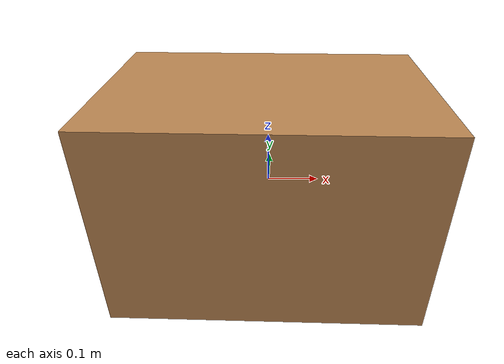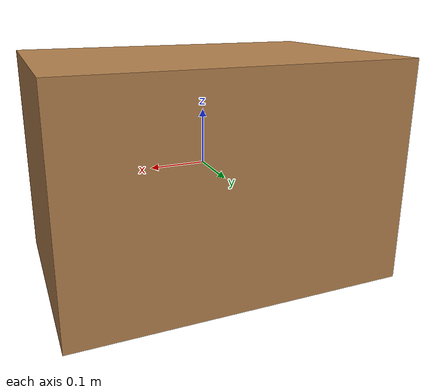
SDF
<?xml version='1.0'?>
<sdf version='1.7'>
  <model name='cardboard_box'>
    <link name='link'>
      <collision name='collision'>
        <geometry>
          <box>
            <size>0.6 0.4 0.4</size>
          </box>
        </geometry>
        <surface>
          <friction>
            <ode>
              <mu>1.0</mu>
              <mu2>1.0</mu2>
            </ode>
          </friction>
        </surface>
      </collision>
      <visual name='visual'>
        <geometry>
          <mesh>
            <uri>model://cardboard_box/meshes/cardboard_box.dae</uri>
          </mesh>
        </geometry>
        <material>
          <ambient>0.7 0.5 0.3 1.0</ambient>
          <diffuse>0.7 0.5 0.3 1.0</diffuse>
        </material>
      </visual>
      <inertial>
        <mass>1.0</mass>
        <inertia>
          <ixx>0.1</ixx><ixy>0.0</ixy><ixz>0.0</ixz>
          <iyy>0.1</iyy><iyz>0.0</iyz>
          <izz>0.1</izz>
        </inertia>
      </inertial>
    </link>
  </model>
</sdf>
